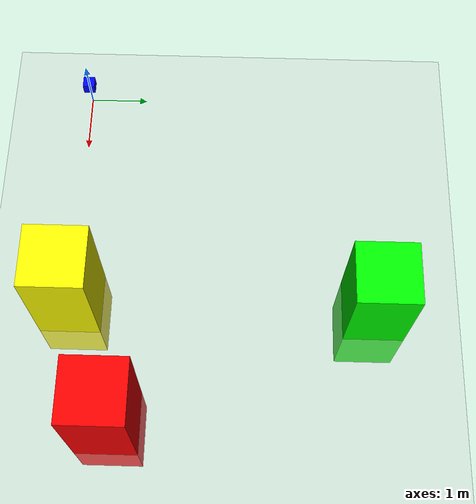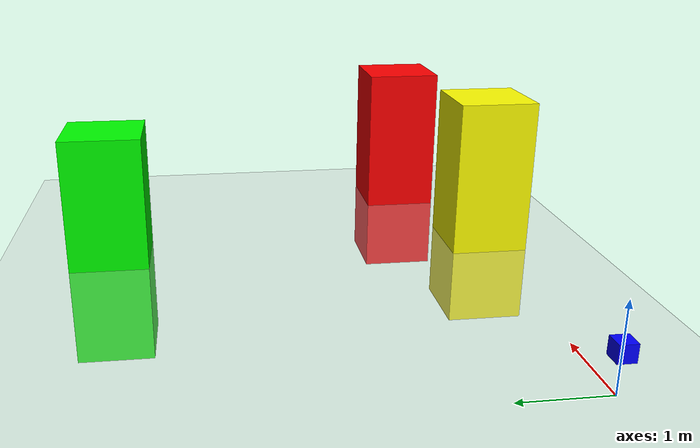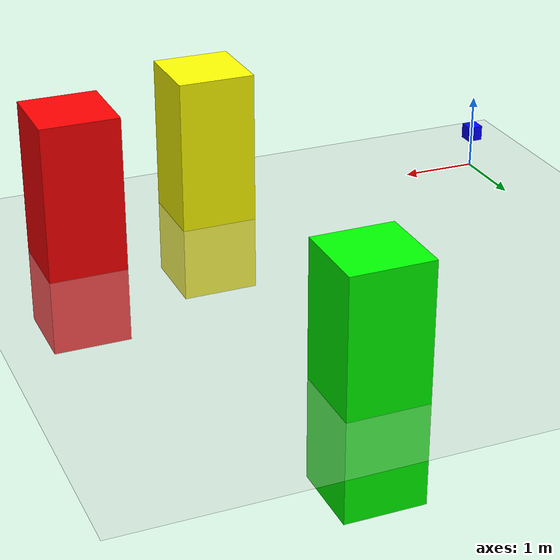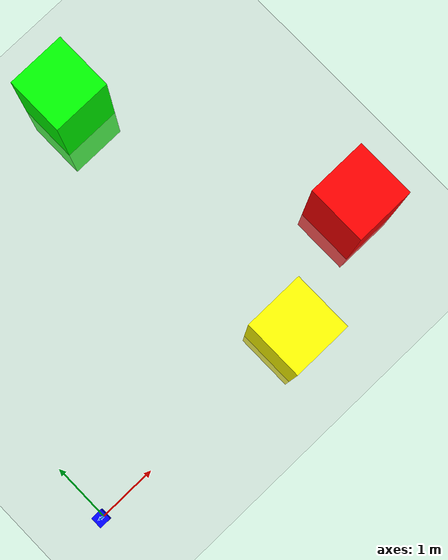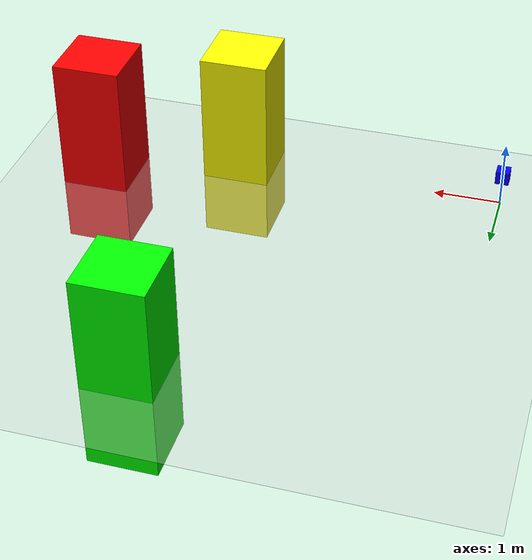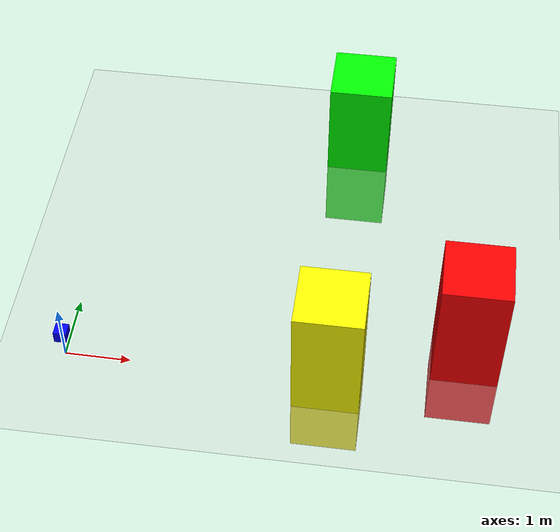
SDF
<?xml version="1.0" ?>
<sdf version="1.8">
  <world name="smoke_lidar_world">
    <physics name="1ms" type="ignored">
      <max_step_size>0.001</max_step_size>
      <real_time_factor>1.0</real_time_factor>
    </physics>
    <plugin filename="gz-sim-physics-system" name="gz::sim::systems::Physics"/>
    <plugin filename="gz-sim-sensors-system" name="gz::sim::systems::Sensors">
      <render_engine>ogre2</render_engine>
    </plugin>
    <plugin filename="gz-sim-scene-broadcaster-system" name="gz::sim::systems::SceneBroadcaster"/>
    <plugin filename="gz-sim-user-commands-system" name="gz::sim::systems::UserCommands"/>
    <plugin filename="gz-sim-particle-emitter-system" name="gz::sim::systems::ParticleEmitter"/>

    <light type="directional" name="sun">
      <cast_shadows>true</cast_shadows>
      <pose>0 0 10 0 0 0</pose>
      <diffuse>0.8 0.8 0.8 1</diffuse>
      <specular>0.2 0.2 0.2 1</specular>
      <direction>-0.5 0.1 -0.9</direction>
    </light>

    <model name="ground_plane">
      <static>true</static>
      <link name="link">
        <collision name="collision">
          <geometry><plane><normal>0 0 1</normal><size>100 100</size></plane></geometry>
        </collision>
        <visual name="visual">
          <geometry><plane><normal>0 0 1</normal><size>100 100</size></plane></geometry>
          <material><ambient>0.8 0.8 0.8 1</ambient><diffuse>0.8 0.8 0.8 1</diffuse></material>
        </visual>
      </link>
    </model>

    <model name="smoke_emitter">
      <pose>2 0 0 0 0 0</pose>
      <static>true</static>
      <link name="link">
        <particle_emitter name="emitter" type="box">
          <emitting>true</emitting>
          <size>2 2 0</size>
          <particle_size>0.2 0.2 0.2</particle_size>
          <lifetime>5</lifetime>
          <min_velocity>0.5</min_velocity>
          <max_velocity>1.5</max_velocity>
          <scale_rate>0.5</scale_rate>
          <rate>300</rate>
          <particle_scatter_ratio>0.6</particle_scatter_ratio>
          <material><ambient>0.5 0.5 0.5 1</ambient><diffuse>0.5 0.5 0.5 1</diffuse></material>
        </particle_emitter>
      </link>
    </model>

    <model name="lidar_model">
      <pose>0 0 0.5 0 0 0</pose>
      <static>true</static>
      <link name="lidar_link">
        <visual name="visual">
          <geometry><box><size>0.2 0.2 0.2</size></box></geometry>
          <material><ambient>0 0 1 1</ambient><diffuse>0 0 1 1</diffuse></material>
        </visual>
        <sensor name='gpu_lidar' type='gpu_lidar'>
          <topic>/lidar/points</topic>
          <frame_id>lidar_link</frame_id>
          <update_rate>10</update_rate>
          <lidar>
            <scan>
              <horizontal>
                <samples>100</samples>
                <resolution>1</resolution>
                <min_angle>-3.14159</min_angle>
                <max_angle>3.14159</max_angle>
              </horizontal>
              <vertical>
                <samples>4</samples>
                <resolution>1</resolution>
                <min_angle>-0.261799</min_angle>
                <max_angle>0.261799</max_angle>
              </vertical>
            </scan>
            <range>
              <min>0.1</min>
              <max>20.0</max>
              <resolution>0.01</resolution>
            </range>
          </lidar>
          <always_on>1</always_on>
          <visualize>true</visualize>
        </sensor>
      </link>
    </model>
    <model name="box_1_outside">
      <pose>4 5 0.2 0 0 0</pose>
      <static>true</static>
      <link name="link">
        <collision name="collision"><geometry><box><size>1 1 3</size></box></geometry></collision>
        <visual name="visual"><geometry><box><size>1 1 3</size></box></geometry><material><ambient>0 1 0 1</ambient><diffuse>0 1 0 1</diffuse></material></visual>
      </link>
    </model>
    <model name="box_2_in_smoke">
      <pose>4 0 0.5 0 0 0</pose>
      <static>true</static>
      <link name="link">
        <collision name="collision"><geometry><box><size>1 1 3</size></box></geometry></collision>
        <visual name="visual"><geometry><box><size>1 1 3</size></box></geometry><material><ambient>1 1 0 1</ambient><diffuse>1 1 0 1</diffuse></material></visual>
      </link>
    </model>
    <model name="box_3_behind">
      <pose>6 0.75 0.5 0 0 0</pose>
      <static>true</static>
      <link name="link">
        <collision name="collision"><geometry><box><size>1 1 3</size></box></geometry></collision>
        <visual name="visual"><geometry><box><size>1 1 3</size></box></geometry><material><ambient>1 0 0 1</ambient><diffuse>1 0 0 1</diffuse></material></visual>
      </link>
    </model>
  </world>
</sdf>
